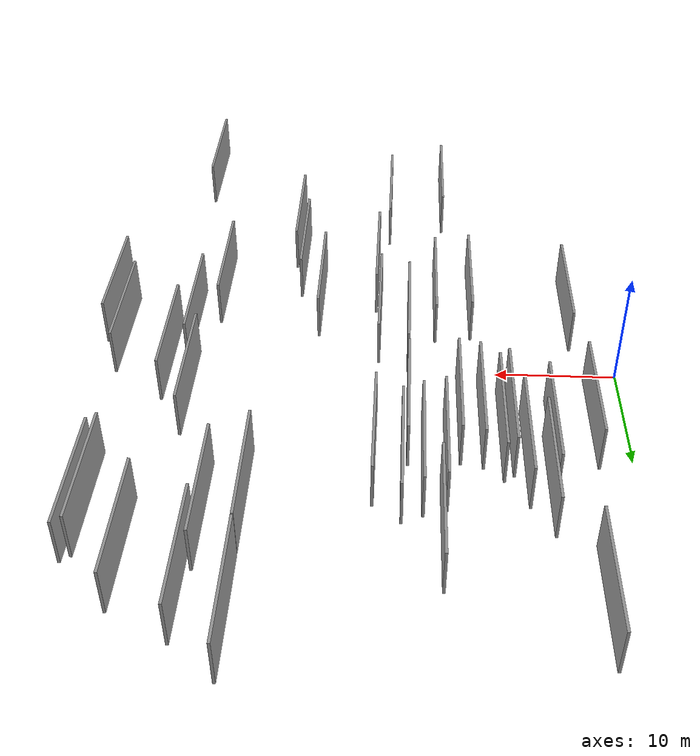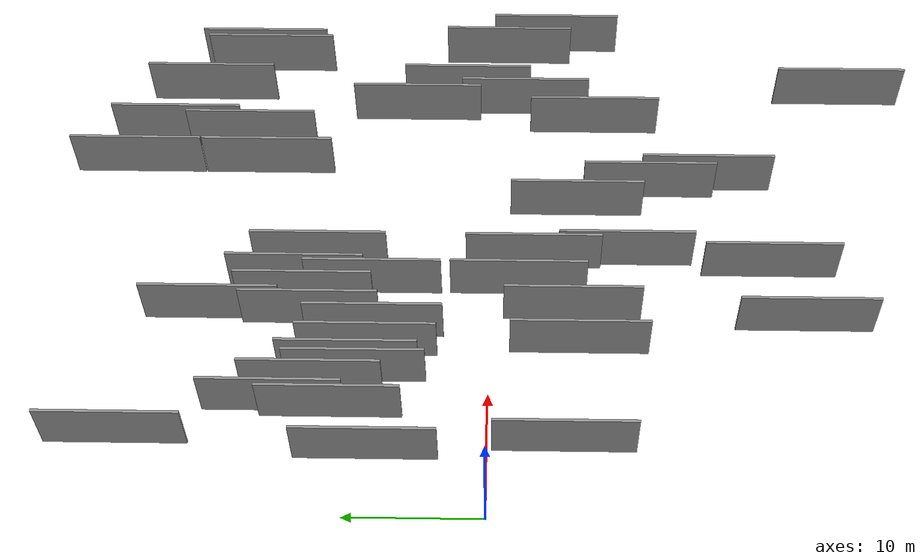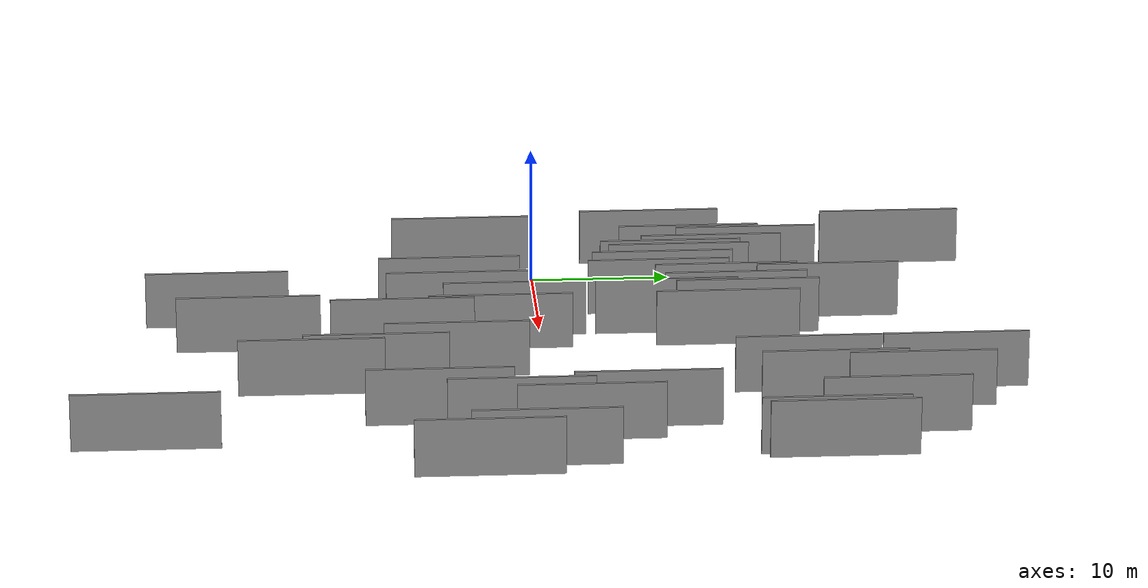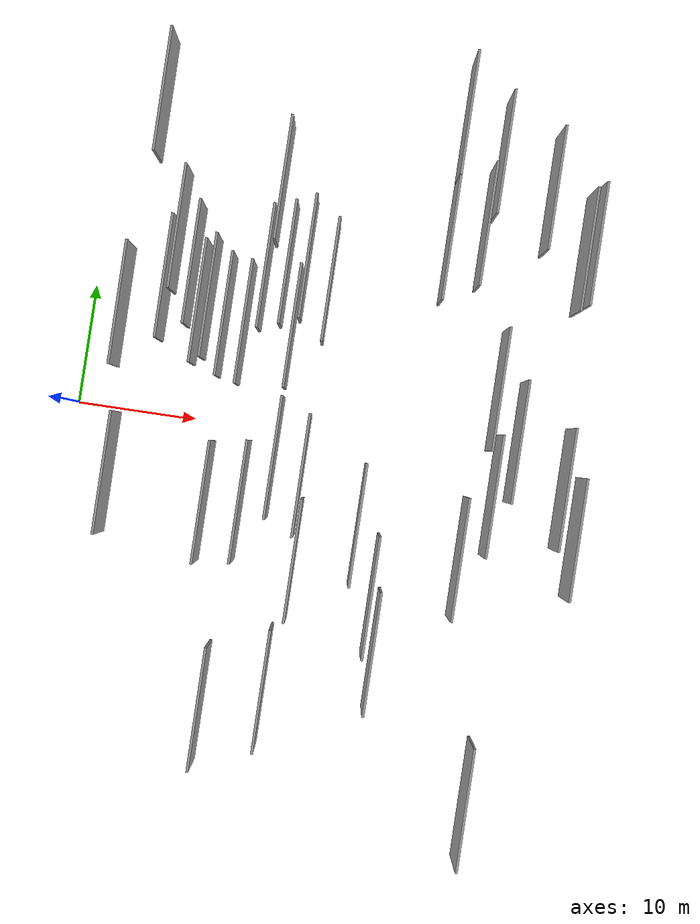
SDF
<sdf version="1.6">
 <world name="default">
  <scene>
   <sky><clouds><speed>12</speed></clouds></sky>
   <ambient>0.4 0.4 0.4 1</ambient>
   <background>0.7 0.7 0.7 1</background>
   <shadows>1</shadows>
  </scene>
  <gravity>0 0 -9.8066</gravity>
  <magnetic_field>6e-06 2.3e-05 -4.2e-05</magnetic_field>
  <physics default="0" name="default_physics" type="ode">
   <ode>
    <solver>
     <type>quick</type>
     <iters>10</iters>
     <sor>1.0</sor>
     <use_dynamic_moi_rescaling>0</use_dynamic_moi_rescaling>
    </solver>
    <constraints>
     <cfm>0</cfm>
     <erp>0.2</erp>
     <contact_max_correcting_vel>100</contact_max_correcting_vel>
     <contact_surface_layer>0.001</contact_surface_layer>
    </constraints>
   </ode>
   <max_step_size>0.004</max_step_size>
   <real_time_factor>1</real_time_factor>
   <real_time_update_rate>250</real_time_update_rate>
  </physics>
  <light name="sun" type="directional">
   <pose>0 0 10 0 0 0</pose>
   <diffuse>0.8 0.8 0.8 1</diffuse>
   <specular>0.2 0.2 0.2 1</specular>
   <attenuation>
    <range>1000</range>
    <constant>0.9</constant>
    <linear>0.01</linear>
    <quadratic>0.001</quadratic>
   </attenuation>
   <direction>-0.5 0.1 -0.9</direction>
  </light>
  <model name="grey_wall_1">
   <static>1</static>
   <pose>27.5334 -16.5251 2.5 0.000000 0.000000 1.570796</pose>
   <link name="link">
    <pose>0 0 2.00 0 0 0</pose>
    <collision name="collision"><geometry><box><size>10.00 0.2 4.00</size></box></geometry></collision>
    <visual name="visual">
     <cast_shadows>0</cast_shadows>
     <geometry><box><size>10.00 0.2 4.00</size></box></geometry>
     <material>
      <script>
       <uri>model://grey_wall/materials/scripts</uri>
       <uri>model://grey_wall/materials/textures</uri>
       <name>vrc/grey_wall</name>
      </script>
     </material>
    </visual>
   </link>
  </model>
  <model name="grey_wall_2">
   <static>1</static>
   <pose>14.3433 -22.9168 2.5 0.000000 0.000000 1.570796</pose>
   <link name="link">
    <pose>0 0 2.00 0 0 0</pose>
    <collision name="collision"><geometry><box><size>10.00 0.2 4.00</size></box></geometry></collision>
    <visual name="visual">
     <cast_shadows>0</cast_shadows>
     <geometry><box><size>10.00 0.2 4.00</size></box></geometry>
     <material>
      <script>
       <uri>model://grey_wall/materials/scripts</uri>
       <uri>model://grey_wall/materials/textures</uri>
       <name>vrc/grey_wall</name>
      </script>
     </material>
    </visual>
   </link>
  </model>
  <model name="grey_wall_3">
   <static>1</static>
   <pose>32.1765 24.7229 2.5 0.000000 0.000000 1.570796</pose>
   <link name="link">
    <pose>0 0 2.00 0 0 0</pose>
    <collision name="collision"><geometry><box><size>10.00 0.2 4.00</size></box></geometry></collision>
    <visual name="visual">
     <cast_shadows>0</cast_shadows>
     <geometry><box><size>10.00 0.2 4.00</size></box></geometry>
     <material>
      <script>
       <uri>model://grey_wall/materials/scripts</uri>
       <uri>model://grey_wall/materials/textures</uri>
       <name>vrc/grey_wall</name>
      </script>
     </material>
    </visual>
   </link>
  </model>
  <model name="grey_wall_4">
   <static>1</static>
   <pose>9.5875 9.3693 2.5 0.000000 0.000000 1.570796</pose>
   <link name="link">
    <pose>0 0 2.00 0 0 0</pose>
    <collision name="collision"><geometry><box><size>10.00 0.2 4.00</size></box></geometry></collision>
    <visual name="visual">
     <cast_shadows>0</cast_shadows>
     <geometry><box><size>10.00 0.2 4.00</size></box></geometry>
     <material>
      <script>
       <uri>model://grey_wall/materials/scripts</uri>
       <uri>model://grey_wall/materials/textures</uri>
       <name>vrc/grey_wall</name>
      </script>
     </material>
    </visual>
   </link>
  </model>
  <model name="grey_wall_5">
   <static>1</static>
   <pose>36.6109 22.4675 2.5 0.000000 0.000000 1.570796</pose>
   <link name="link">
    <pose>0 0 2.00 0 0 0</pose>
    <collision name="collision"><geometry><box><size>10.00 0.2 4.00</size></box></geometry></collision>
    <visual name="visual">
     <cast_shadows>0</cast_shadows>
     <geometry><box><size>10.00 0.2 4.00</size></box></geometry>
     <material>
      <script>
       <uri>model://grey_wall/materials/scripts</uri>
       <uri>model://grey_wall/materials/textures</uri>
       <name>vrc/grey_wall</name>
      </script>
     </material>
    </visual>
   </link>
  </model>
  <model name="grey_wall_6">
   <static>1</static>
   <pose>24.8940 -6.5168 2.5 0.000000 0.000000 1.570796</pose>
   <link name="link">
    <pose>0 0 2.00 0 0 0</pose>
    <collision name="collision"><geometry><box><size>10.00 0.2 4.00</size></box></geometry></collision>
    <visual name="visual">
     <cast_shadows>0</cast_shadows>
     <geometry><box><size>10.00 0.2 4.00</size></box></geometry>
     <material>
      <script>
       <uri>model://grey_wall/materials/scripts</uri>
       <uri>model://grey_wall/materials/textures</uri>
       <name>vrc/grey_wall</name>
      </script>
     </material>
    </visual>
   </link>
  </model>
  <model name="grey_wall_7">
   <static>1</static>
   <pose>35.3294 -2.6128 2.5 0.000000 0.000000 1.570796</pose>
   <link name="link">
    <pose>0 0 2.00 0 0 0</pose>
    <collision name="collision"><geometry><box><size>10.00 0.2 4.00</size></box></geometry></collision>
    <visual name="visual">
     <cast_shadows>0</cast_shadows>
     <geometry><box><size>10.00 0.2 4.00</size></box></geometry>
     <material>
      <script>
       <uri>model://grey_wall/materials/scripts</uri>
       <uri>model://grey_wall/materials/textures</uri>
       <name>vrc/grey_wall</name>
      </script>
     </material>
    </visual>
   </link>
  </model>
  <model name="grey_wall_8">
   <static>1</static>
   <pose>14.5421 12.9286 2.5 0.000000 0.000000 1.570796</pose>
   <link name="link">
    <pose>0 0 2.00 0 0 0</pose>
    <collision name="collision"><geometry><box><size>10.00 0.2 4.00</size></box></geometry></collision>
    <visual name="visual">
     <cast_shadows>0</cast_shadows>
     <geometry><box><size>10.00 0.2 4.00</size></box></geometry>
     <material>
      <script>
       <uri>model://grey_wall/materials/scripts</uri>
       <uri>model://grey_wall/materials/textures</uri>
       <name>vrc/grey_wall</name>
      </script>
     </material>
    </visual>
   </link>
  </model>
  <model name="grey_wall_9">
   <static>1</static>
   <pose>3.3125 8.3041 2.5 0.000000 0.000000 1.570796</pose>
   <link name="link">
    <pose>0 0 2.00 0 0 0</pose>
    <collision name="collision"><geometry><box><size>10.00 0.2 4.00</size></box></geometry></collision>
    <visual name="visual">
     <cast_shadows>0</cast_shadows>
     <geometry><box><size>10.00 0.2 4.00</size></box></geometry>
     <material>
      <script>
       <uri>model://grey_wall/materials/scripts</uri>
       <uri>model://grey_wall/materials/textures</uri>
       <name>vrc/grey_wall</name>
      </script>
     </material>
    </visual>
   </link>
  </model>
  <model name="grey_wall_10">
   <static>1</static>
   <pose>11.7947 8.6516 2.5 0.000000 0.000000 1.570796</pose>
   <link name="link">
    <pose>0 0 2.00 0 0 0</pose>
    <collision name="collision"><geometry><box><size>10.00 0.2 4.00</size></box></geometry></collision>
    <visual name="visual">
     <cast_shadows>0</cast_shadows>
     <geometry><box><size>10.00 0.2 4.00</size></box></geometry>
     <material>
      <script>
       <uri>model://grey_wall/materials/scripts</uri>
       <uri>model://grey_wall/materials/textures</uri>
       <name>vrc/grey_wall</name>
      </script>
     </material>
    </visual>
   </link>
  </model>
  <model name="grey_wall_11">
   <static>1</static>
   <pose>14.8966 20.0811 2.5 0.000000 0.000000 1.570796</pose>
   <link name="link">
    <pose>0 0 2.00 0 0 0</pose>
    <collision name="collision"><geometry><box><size>10.00 0.2 4.00</size></box></geometry></collision>
    <visual name="visual">
     <cast_shadows>0</cast_shadows>
     <geometry><box><size>10.00 0.2 4.00</size></box></geometry>
     <material>
      <script>
       <uri>model://grey_wall/materials/scripts</uri>
       <uri>model://grey_wall/materials/textures</uri>
       <name>vrc/grey_wall</name>
      </script>
     </material>
    </visual>
   </link>
  </model>
  <model name="grey_wall_12">
   <static>1</static>
   <pose>19.8237 12.6126 2.5 0.000000 0.000000 1.570796</pose>
   <link name="link">
    <pose>0 0 2.00 0 0 0</pose>
    <collision name="collision"><geometry><box><size>10.00 0.2 4.00</size></box></geometry></collision>
    <visual name="visual">
     <cast_shadows>0</cast_shadows>
     <geometry><box><size>10.00 0.2 4.00</size></box></geometry>
     <material>
      <script>
       <uri>model://grey_wall/materials/scripts</uri>
       <uri>model://grey_wall/materials/textures</uri>
       <name>vrc/grey_wall</name>
      </script>
     </material>
    </visual>
   </link>
  </model>
  <model name="grey_wall_13">
   <static>1</static>
   <pose>15.1489 -6.0615 2.5 0.000000 0.000000 1.570796</pose>
   <link name="link">
    <pose>0 0 2.00 0 0 0</pose>
    <collision name="collision"><geometry><box><size>10.00 0.2 4.00</size></box></geometry></collision>
    <visual name="visual">
     <cast_shadows>0</cast_shadows>
     <geometry><box><size>10.00 0.2 4.00</size></box></geometry>
     <material>
      <script>
       <uri>model://grey_wall/materials/scripts</uri>
       <uri>model://grey_wall/materials/textures</uri>
       <name>vrc/grey_wall</name>
      </script>
     </material>
    </visual>
   </link>
  </model>
  <model name="grey_wall_14">
   <static>1</static>
   <pose>19.2106 -20.7530 2.5 0.000000 0.000000 1.570796</pose>
   <link name="link">
    <pose>0 0 2.00 0 0 0</pose>
    <collision name="collision"><geometry><box><size>10.00 0.2 4.00</size></box></geometry></collision>
    <visual name="visual">
     <cast_shadows>0</cast_shadows>
     <geometry><box><size>10.00 0.2 4.00</size></box></geometry>
     <material>
      <script>
       <uri>model://grey_wall/materials/scripts</uri>
       <uri>model://grey_wall/materials/textures</uri>
       <name>vrc/grey_wall</name>
      </script>
     </material>
    </visual>
   </link>
  </model>
  <model name="grey_wall_15">
   <static>1</static>
   <pose>10.3399 9.9173 2.5 0.000000 0.000000 1.570796</pose>
   <link name="link">
    <pose>0 0 2.00 0 0 0</pose>
    <collision name="collision"><geometry><box><size>10.00 0.2 4.00</size></box></geometry></collision>
    <visual name="visual">
     <cast_shadows>0</cast_shadows>
     <geometry><box><size>10.00 0.2 4.00</size></box></geometry>
     <material>
      <script>
       <uri>model://grey_wall/materials/scripts</uri>
       <uri>model://grey_wall/materials/textures</uri>
       <name>vrc/grey_wall</name>
      </script>
     </material>
    </visual>
   </link>
  </model>
  <model name="grey_wall_16">
   <static>1</static>
   <pose>13.4507 8.2535 2.5 0.000000 0.000000 1.570796</pose>
   <link name="link">
    <pose>0 0 2.00 0 0 0</pose>
    <collision name="collision"><geometry><box><size>10.00 0.2 4.00</size></box></geometry></collision>
    <visual name="visual">
     <cast_shadows>0</cast_shadows>
     <geometry><box><size>10.00 0.2 4.00</size></box></geometry>
     <material>
      <script>
       <uri>model://grey_wall/materials/scripts</uri>
       <uri>model://grey_wall/materials/textures</uri>
       <name>vrc/grey_wall</name>
      </script>
     </material>
    </visual>
   </link>
  </model>
  <model name="grey_wall_17">
   <static>1</static>
   <pose>17.3730 -2.1441 2.5 0.000000 0.000000 1.570796</pose>
   <link name="link">
    <pose>0 0 2.00 0 0 0</pose>
    <collision name="collision"><geometry><box><size>10.00 0.2 4.00</size></box></geometry></collision>
    <visual name="visual">
     <cast_shadows>0</cast_shadows>
     <geometry><box><size>10.00 0.2 4.00</size></box></geometry>
     <material>
      <script>
       <uri>model://grey_wall/materials/scripts</uri>
       <uri>model://grey_wall/materials/textures</uri>
       <name>vrc/grey_wall</name>
      </script>
     </material>
    </visual>
   </link>
  </model>
  <model name="grey_wall_18">
   <static>1</static>
   <pose>33.3802 -8.0274 2.5 0.000000 0.000000 1.570796</pose>
   <link name="link">
    <pose>0 0 2.00 0 0 0</pose>
    <collision name="collision"><geometry><box><size>10.00 0.2 4.00</size></box></geometry></collision>
    <visual name="visual">
     <cast_shadows>0</cast_shadows>
     <geometry><box><size>10.00 0.2 4.00</size></box></geometry>
     <material>
      <script>
       <uri>model://grey_wall/materials/scripts</uri>
       <uri>model://grey_wall/materials/textures</uri>
       <name>vrc/grey_wall</name>
      </script>
     </material>
    </visual>
   </link>
  </model>
  <model name="grey_wall_19">
   <static>1</static>
   <pose>16.2258 13.4867 2.5 0.000000 0.000000 1.570796</pose>
   <link name="link">
    <pose>0 0 2.00 0 0 0</pose>
    <collision name="collision"><geometry><box><size>10.00 0.2 4.00</size></box></geometry></collision>
    <visual name="visual">
     <cast_shadows>0</cast_shadows>
     <geometry><box><size>10.00 0.2 4.00</size></box></geometry>
     <material>
      <script>
       <uri>model://grey_wall/materials/scripts</uri>
       <uri>model://grey_wall/materials/textures</uri>
       <name>vrc/grey_wall</name>
      </script>
     </material>
    </visual>
   </link>
  </model>
  <model name="grey_wall_20">
   <static>1</static>
   <pose>36.7096 1.9951 2.5 0.000000 0.000000 1.570796</pose>
   <link name="link">
    <pose>0 0 2.00 0 0 0</pose>
    <collision name="collision"><geometry><box><size>10.00 0.2 4.00</size></box></geometry></collision>
    <visual name="visual">
     <cast_shadows>0</cast_shadows>
     <geometry><box><size>10.00 0.2 4.00</size></box></geometry>
     <material>
      <script>
       <uri>model://grey_wall/materials/scripts</uri>
       <uri>model://grey_wall/materials/textures</uri>
       <name>vrc/grey_wall</name>
      </script>
     </material>
    </visual>
   </link>
  </model>
  <model name="grey_wall_21">
   <static>1</static>
   <pose>12.1963 -6.5241 2.5 0.000000 0.000000 1.570796</pose>
   <link name="link">
    <pose>0 0 2.00 0 0 0</pose>
    <collision name="collision"><geometry><box><size>10.00 0.2 4.00</size></box></geometry></collision>
    <visual name="visual">
     <cast_shadows>0</cast_shadows>
     <geometry><box><size>10.00 0.2 4.00</size></box></geometry>
     <material>
      <script>
       <uri>model://grey_wall/materials/scripts</uri>
       <uri>model://grey_wall/materials/textures</uri>
       <name>vrc/grey_wall</name>
      </script>
     </material>
    </visual>
   </link>
  </model>
  <model name="grey_wall_22">
   <static>1</static>
   <pose>28.8559 17.2850 2.5 0.000000 0.000000 1.570796</pose>
   <link name="link">
    <pose>0 0 2.00 0 0 0</pose>
    <collision name="collision"><geometry><box><size>10.00 0.2 4.00</size></box></geometry></collision>
    <visual name="visual">
     <cast_shadows>0</cast_shadows>
     <geometry><box><size>10.00 0.2 4.00</size></box></geometry>
     <material>
      <script>
       <uri>model://grey_wall/materials/scripts</uri>
       <uri>model://grey_wall/materials/textures</uri>
       <name>vrc/grey_wall</name>
      </script>
     </material>
    </visual>
   </link>
  </model>
  <model name="grey_wall_23">
   <static>1</static>
   <pose>7.0879 14.9931 2.5 0.000000 0.000000 1.570796</pose>
   <link name="link">
    <pose>0 0 2.00 0 0 0</pose>
    <collision name="collision"><geometry><box><size>10.00 0.2 4.00</size></box></geometry></collision>
    <visual name="visual">
     <cast_shadows>0</cast_shadows>
     <geometry><box><size>10.00 0.2 4.00</size></box></geometry>
     <material>
      <script>
       <uri>model://grey_wall/materials/scripts</uri>
       <uri>model://grey_wall/materials/textures</uri>
       <name>vrc/grey_wall</name>
      </script>
     </material>
    </visual>
   </link>
  </model>
  <model name="grey_wall_24">
   <static>1</static>
   <pose>40.5576 18.5346 2.5 0.000000 0.000000 1.570796</pose>
   <link name="link">
    <pose>0 0 2.00 0 0 0</pose>
    <collision name="collision"><geometry><box><size>10.00 0.2 4.00</size></box></geometry></collision>
    <visual name="visual">
     <cast_shadows>0</cast_shadows>
     <geometry><box><size>10.00 0.2 4.00</size></box></geometry>
     <material>
      <script>
       <uri>model://grey_wall/materials/scripts</uri>
       <uri>model://grey_wall/materials/textures</uri>
       <name>vrc/grey_wall</name>
      </script>
     </material>
    </visual>
   </link>
  </model>
  <model name="grey_wall_25">
   <static>1</static>
   <pose>42.4357 -5.0856 2.5 0.000000 0.000000 1.570796</pose>
   <link name="link">
    <pose>0 0 2.00 0 0 0</pose>
    <collision name="collision"><geometry><box><size>10.00 0.2 4.00</size></box></geometry></collision>
    <visual name="visual">
     <cast_shadows>0</cast_shadows>
     <geometry><box><size>10.00 0.2 4.00</size></box></geometry>
     <material>
      <script>
       <uri>model://grey_wall/materials/scripts</uri>
       <uri>model://grey_wall/materials/textures</uri>
       <name>vrc/grey_wall</name>
      </script>
     </material>
    </visual>
   </link>
  </model>
  <model name="grey_wall_26">
   <static>1</static>
   <pose>40.9899 -1.2519 2.5 0.000000 0.000000 1.570796</pose>
   <link name="link">
    <pose>0 0 2.00 0 0 0</pose>
    <collision name="collision"><geometry><box><size>10.00 0.2 4.00</size></box></geometry></collision>
    <visual name="visual">
     <cast_shadows>0</cast_shadows>
     <geometry><box><size>10.00 0.2 4.00</size></box></geometry>
     <material>
      <script>
       <uri>model://grey_wall/materials/scripts</uri>
       <uri>model://grey_wall/materials/textures</uri>
       <name>vrc/grey_wall</name>
      </script>
     </material>
    </visual>
   </link>
  </model>
  <model name="grey_wall_27">
   <static>1</static>
   <pose>4.3468 25.6353 2.5 0.000000 0.000000 1.570796</pose>
   <link name="link">
    <pose>0 0 2.00 0 0 0</pose>
    <collision name="collision"><geometry><box><size>10.00 0.2 4.00</size></box></geometry></collision>
    <visual name="visual">
     <cast_shadows>0</cast_shadows>
     <geometry><box><size>10.00 0.2 4.00</size></box></geometry>
     <material>
      <script>
       <uri>model://grey_wall/materials/scripts</uri>
       <uri>model://grey_wall/materials/textures</uri>
       <name>vrc/grey_wall</name>
      </script>
     </material>
    </visual>
   </link>
  </model>
  <model name="grey_wall_28">
   <static>1</static>
   <pose>26.7748 -12.0916 2.5 0.000000 0.000000 1.570796</pose>
   <link name="link">
    <pose>0 0 2.00 0 0 0</pose>
    <collision name="collision"><geometry><box><size>10.00 0.2 4.00</size></box></geometry></collision>
    <visual name="visual">
     <cast_shadows>0</cast_shadows>
     <geometry><box><size>10.00 0.2 4.00</size></box></geometry>
     <material>
      <script>
       <uri>model://grey_wall/materials/scripts</uri>
       <uri>model://grey_wall/materials/textures</uri>
       <name>vrc/grey_wall</name>
      </script>
     </material>
    </visual>
   </link>
  </model>
  <model name="grey_wall_29">
   <static>1</static>
   <pose>20.1613 -10.0863 2.5 0.000000 0.000000 1.570796</pose>
   <link name="link">
    <pose>0 0 2.00 0 0 0</pose>
    <collision name="collision"><geometry><box><size>10.00 0.2 4.00</size></box></geometry></collision>
    <visual name="visual">
     <cast_shadows>0</cast_shadows>
     <geometry><box><size>10.00 0.2 4.00</size></box></geometry>
     <material>
      <script>
       <uri>model://grey_wall/materials/scripts</uri>
       <uri>model://grey_wall/materials/textures</uri>
       <name>vrc/grey_wall</name>
      </script>
     </material>
    </visual>
   </link>
  </model>
  <model name="grey_wall_30">
   <static>1</static>
   <pose>36.7127 -27.6821 2.5 0.000000 0.000000 1.570796</pose>
   <link name="link">
    <pose>0 0 2.00 0 0 0</pose>
    <collision name="collision"><geometry><box><size>10.00 0.2 4.00</size></box></geometry></collision>
    <visual name="visual">
     <cast_shadows>0</cast_shadows>
     <geometry><box><size>10.00 0.2 4.00</size></box></geometry>
     <material>
      <script>
       <uri>model://grey_wall/materials/scripts</uri>
       <uri>model://grey_wall/materials/textures</uri>
       <name>vrc/grey_wall</name>
      </script>
     </material>
    </visual>
   </link>
  </model>
  <model name="grey_wall_31">
   <static>1</static>
   <pose>34.5970 5.9348 2.5 0.000000 0.000000 1.570796</pose>
   <link name="link">
    <pose>0 0 2.00 0 0 0</pose>
    <collision name="collision"><geometry><box><size>10.00 0.2 4.00</size></box></geometry></collision>
    <visual name="visual">
     <cast_shadows>0</cast_shadows>
     <geometry><box><size>10.00 0.2 4.00</size></box></geometry>
     <material>
      <script>
       <uri>model://grey_wall/materials/scripts</uri>
       <uri>model://grey_wall/materials/textures</uri>
       <name>vrc/grey_wall</name>
      </script>
     </material>
    </visual>
   </link>
  </model>
  <model name="grey_wall_32">
   <static>1</static>
   <pose>31.6333 18.8408 2.5 0.000000 0.000000 1.570796</pose>
   <link name="link">
    <pose>0 0 2.00 0 0 0</pose>
    <collision name="collision"><geometry><box><size>10.00 0.2 4.00</size></box></geometry></collision>
    <visual name="visual">
     <cast_shadows>0</cast_shadows>
     <geometry><box><size>10.00 0.2 4.00</size></box></geometry>
     <material>
      <script>
       <uri>model://grey_wall/materials/scripts</uri>
       <uri>model://grey_wall/materials/textures</uri>
       <name>vrc/grey_wall</name>
      </script>
     </material>
    </visual>
   </link>
  </model>
  <model name="grey_wall_33">
   <static>1</static>
   <pose>6.6276 10.9223 2.5 0.000000 0.000000 1.570796</pose>
   <link name="link">
    <pose>0 0 2.00 0 0 0</pose>
    <collision name="collision"><geometry><box><size>10.00 0.2 4.00</size></box></geometry></collision>
    <visual name="visual">
     <cast_shadows>0</cast_shadows>
     <geometry><box><size>10.00 0.2 4.00</size></box></geometry>
     <material>
      <script>
       <uri>model://grey_wall/materials/scripts</uri>
       <uri>model://grey_wall/materials/textures</uri>
       <name>vrc/grey_wall</name>
      </script>
     </material>
    </visual>
   </link>
  </model>
  <model name="grey_wall_34">
   <static>1</static>
   <pose>17.7490 14.1705 2.5 0.000000 0.000000 1.570796</pose>
   <link name="link">
    <pose>0 0 2.00 0 0 0</pose>
    <collision name="collision"><geometry><box><size>10.00 0.2 4.00</size></box></geometry></collision>
    <visual name="visual">
     <cast_shadows>0</cast_shadows>
     <geometry><box><size>10.00 0.2 4.00</size></box></geometry>
     <material>
      <script>
       <uri>model://grey_wall/materials/scripts</uri>
       <uri>model://grey_wall/materials/textures</uri>
       <name>vrc/grey_wall</name>
      </script>
     </material>
    </visual>
   </link>
  </model>
  <model name="grey_wall_35">
   <static>1</static>
   <pose>8.6470 12.3737 2.5 0.000000 0.000000 1.570796</pose>
   <link name="link">
    <pose>0 0 2.00 0 0 0</pose>
    <collision name="collision"><geometry><box><size>10.00 0.2 4.00</size></box></geometry></collision>
    <visual name="visual">
     <cast_shadows>0</cast_shadows>
     <geometry><box><size>10.00 0.2 4.00</size></box></geometry>
     <material>
      <script>
       <uri>model://grey_wall/materials/scripts</uri>
       <uri>model://grey_wall/materials/textures</uri>
       <name>vrc/grey_wall</name>
      </script>
     </material>
    </visual>
   </link>
  </model>
  <model name="grey_wall_36">
   <static>1</static>
   <pose>4.0761 -5.3414 2.5 0.000000 0.000000 1.570796</pose>
   <link name="link">
    <pose>0 0 2.00 0 0 0</pose>
    <collision name="collision"><geometry><box><size>10.00 0.2 4.00</size></box></geometry></collision>
    <visual name="visual">
     <cast_shadows>0</cast_shadows>
     <geometry><box><size>10.00 0.2 4.00</size></box></geometry>
     <material>
      <script>
       <uri>model://grey_wall/materials/scripts</uri>
       <uri>model://grey_wall/materials/textures</uri>
       <name>vrc/grey_wall</name>
      </script>
     </material>
    </visual>
   </link>
  </model>
  <model name="grey_wall_37">
   <static>1</static>
   <pose>39.9009 18.0032 2.5 0.000000 0.000000 1.570796</pose>
   <link name="link">
    <pose>0 0 2.00 0 0 0</pose>
    <collision name="collision"><geometry><box><size>10.00 0.2 4.00</size></box></geometry></collision>
    <visual name="visual">
     <cast_shadows>0</cast_shadows>
     <geometry><box><size>10.00 0.2 4.00</size></box></geometry>
     <material>
      <script>
       <uri>model://grey_wall/materials/scripts</uri>
       <uri>model://grey_wall/materials/textures</uri>
       <name>vrc/grey_wall</name>
      </script>
     </material>
    </visual>
   </link>
  </model>
  <model name="grey_wall_38">
   <static>1</static>
   <pose>17.3422 8.5159 2.5 0.000000 0.000000 1.570796</pose>
   <link name="link">
    <pose>0 0 2.00 0 0 0</pose>
    <collision name="collision"><geometry><box><size>10.00 0.2 4.00</size></box></geometry></collision>
    <visual name="visual">
     <cast_shadows>0</cast_shadows>
     <geometry><box><size>10.00 0.2 4.00</size></box></geometry>
     <material>
      <script>
       <uri>model://grey_wall/materials/scripts</uri>
       <uri>model://grey_wall/materials/textures</uri>
       <name>vrc/grey_wall</name>
      </script>
     </material>
    </visual>
   </link>
  </model>
  <model name="grey_wall_39">
   <static>1</static>
   <pose>19.7936 -3.2439 2.5 0.000000 0.000000 1.570796</pose>
   <link name="link">
    <pose>0 0 2.00 0 0 0</pose>
    <collision name="collision"><geometry><box><size>10.00 0.2 4.00</size></box></geometry></collision>
    <visual name="visual">
     <cast_shadows>0</cast_shadows>
     <geometry><box><size>10.00 0.2 4.00</size></box></geometry>
     <material>
      <script>
       <uri>model://grey_wall/materials/scripts</uri>
       <uri>model://grey_wall/materials/textures</uri>
       <name>vrc/grey_wall</name>
      </script>
     </material>
    </visual>
   </link>
  </model>
  <model name="grey_wall_40">
   <static>1</static>
   <pose>28.8491 27.3768 2.5 0.000000 0.000000 1.570796</pose>
   <link name="link">
    <pose>0 0 2.00 0 0 0</pose>
    <collision name="collision"><geometry><box><size>10.00 0.2 4.00</size></box></geometry></collision>
    <visual name="visual">
     <cast_shadows>0</cast_shadows>
     <geometry><box><size>10.00 0.2 4.00</size></box></geometry>
     <material>
      <script>
       <uri>model://grey_wall/materials/scripts</uri>
       <uri>model://grey_wall/materials/textures</uri>
       <name>vrc/grey_wall</name>
      </script>
     </material>
    </visual>
   </link>
  </model>
 </world>
</sdf>
